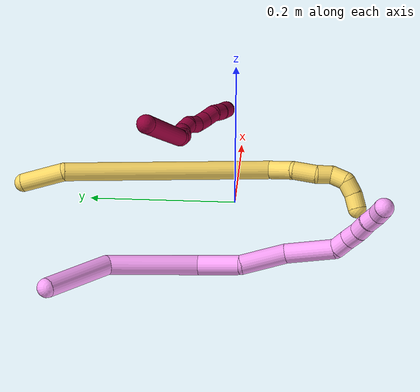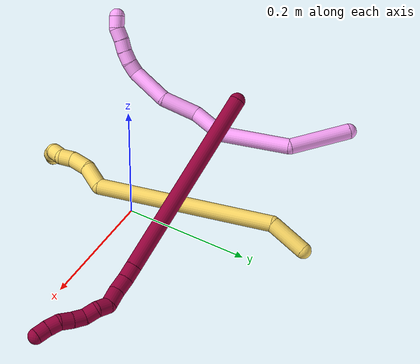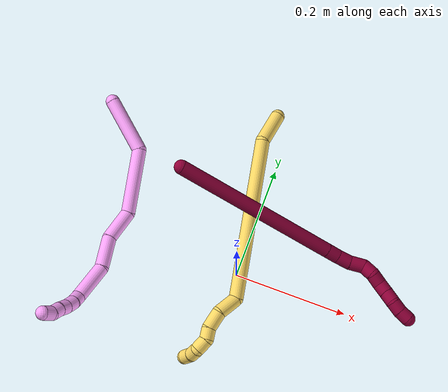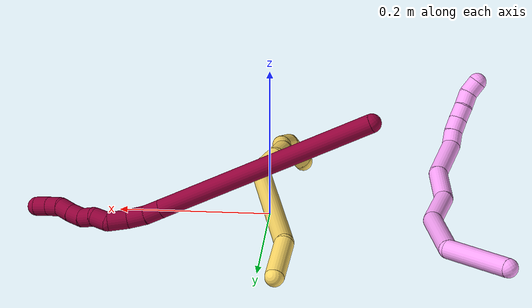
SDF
<sdf version="1.7">
 <world name="default">
  <model name="4">
   <static>0</static>
   <link name="4">
    <collision name="collision-cylinder-e_1_1_4">
     <pose>0.004261 -0.046142 -0.019751 1.97526 0.084699 0.128289</pose>
     <geometry><cylinder><radius>0.0125</radius><length>0.100744</length></cylinder></geometry>
     <surface>
      <friction><ode><mu>1.16</mu><mu2>1.16</mu2><slip1>0</slip1><slip2>0</slip2></ode></friction>
      <contact><ode><kp>1e+06</kp><kd>1</kd><max_vel>0</max_vel><min_depth>0.001</min_depth></ode></contact>
     </surface>
    </collision>
    <visual name="visual-cylinder-e_1_1_4">
     <pose>0.004261 -0.046142 -0.019751 1.97526 0.084699 0.128289</pose>
     <geometry><cylinder><radius>0.0125</radius><length>0.100744</length></cylinder></geometry>
     <material><ambient>1 0.65098 0.996078 1</ambient></material>
    </visual>
    <collision name="collision-cylinder-e_2_4_5">
     <pose>-0.004548 -0.147937 -0.029153 1.38692 -0.226923 -0.188861</pose>
     <geometry><cylinder><radius>0.0125</radius><length>0.116195</length></cylinder></geometry>
     <surface>
      <friction><ode><mu>1.16</mu><mu2>1.16</mu2><slip1>0</slip1><slip2>0</slip2></ode></friction>
      <contact><ode><kp>1e+06</kp><kd>1</kd><max_vel>0</max_vel><min_depth>0.001</min_depth></ode></contact>
     </surface>
    </collision>
    <visual name="visual-cylinder-e_2_4_5">
     <pose>-0.004548 -0.147937 -0.029153 1.38692 -0.226923 -0.188861</pose>
     <geometry><cylinder><radius>0.0125</radius><length>0.116195</length></cylinder></geometry>
     <material><ambient>1 0.65098 0.996078 1</ambient></material>
    </visual>
    <collision name="collision-cylinder-e_3_5_6">
     <pose>-0.022773 -0.225366 -0.001267 0.892842 -0.182309 -0.087449</pose>
     <geometry><cylinder><radius>0.0125</radius><length>0.056858</length></cylinder></geometry>
     <surface>
      <friction><ode><mu>1.16</mu><mu2>1.16</mu2><slip1>0</slip1><slip2>0</slip2></ode></friction>
      <contact><ode><kp>1e+06</kp><kd>1</kd><max_vel>0</max_vel><min_depth>0.001</min_depth></ode></contact>
     </surface>
    </collision>
    <visual name="visual-cylinder-e_3_5_6">
     <pose>-0.022773 -0.225366 -0.001267 0.892842 -0.182309 -0.087449</pose>
     <geometry><cylinder><radius>0.0125</radius><length>0.056858</length></cylinder></geometry>
     <material><ambient>1 0.65098 0.996078 1</ambient></material>
    </visual>
    <collision name="collision-cylinder-e_4_6_7">
     <pose>-0.026994 -0.27489 0.026147 1.2288 0.031661 0.022337</pose>
     <geometry><cylinder><radius>0.0125</radius><length>0.058939</length></cylinder></geometry>
     <surface>
      <friction><ode><mu>1.16</mu><mu2>1.16</mu2><slip1>0</slip1><slip2>0</slip2></ode></friction>
      <contact><ode><kp>1e+06</kp><kd>1</kd><max_vel>0</max_vel><min_depth>0.001</min_depth></ode></contact>
     </surface>
    </collision>
    <visual name="visual-cylinder-e_4_6_7">
     <pose>-0.026994 -0.27489 0.026147 1.2288 0.031661 0.022337</pose>
     <geometry><cylinder><radius>0.0125</radius><length>0.058939</length></cylinder></geometry>
     <material><ambient>1 0.65098 0.996078 1</ambient></material>
    </visual>
    <collision name="collision-cylinder-e_5_7_8">
     <pose>-0.029203 -0.327597 0.057819 0.852976 -0.094524 -0.042975</pose>
     <geometry><cylinder><radius>0.0125</radius><length>0.066567</length></cylinder></geometry>
     <surface>
      <friction><ode><mu>1.16</mu><mu2>1.16</mu2><slip1>0</slip1><slip2>0</slip2></ode></friction>
      <contact><ode><kp>1e+06</kp><kd>1</kd><max_vel>0</max_vel><min_depth>0.001</min_depth></ode></contact>
     </surface>
    </collision>
    <visual name="visual-cylinder-e_5_7_8">
     <pose>-0.029203 -0.327597 0.057819 0.852976 -0.094524 -0.042975</pose>
     <geometry><cylinder><radius>0.0125</radius><length>0.066567</length></cylinder></geometry>
     <material><ambient>1 0.65098 0.996078 1</ambient></material>
    </visual>
    <collision name="collision-cylinder-e_6_8_9">
     <pose>-0.028022 -0.358905 0.086459 0.747799 0.433522 0.172382</pose>
     <geometry><cylinder><radius>0.0125</radius><length>0.020578</length></cylinder></geometry>
     <surface>
      <friction><ode><mu>1.16</mu><mu2>1.16</mu2><slip1>0</slip1><slip2>0</slip2></ode></friction>
      <contact><ode><kp>1e+06</kp><kd>1</kd><max_vel>0</max_vel><min_depth>0.001</min_depth></ode></contact>
     </surface>
    </collision>
    <visual name="visual-cylinder-e_6_8_9">
     <pose>-0.028022 -0.358905 0.086459 0.747799 0.433522 0.172382</pose>
     <geometry><cylinder><radius>0.0125</radius><length>0.020578</length></cylinder></geometry>
     <material><ambient>1 0.65098 0.996078 1</ambient></material>
    </visual>
    <collision name="collision-cylinder-e_7_9_10">
     <pose>-0.020098 -0.370203 0.101288 0.554923 0.366268 0.1054</pose>
     <geometry><cylinder><radius>0.0125</radius><length>0.020118</length></cylinder></geometry>
     <surface>
      <friction><ode><mu>1.16</mu><mu2>1.16</mu2><slip1>0</slip1><slip2>0</slip2></ode></friction>
      <contact><ode><kp>1e+06</kp><kd>1</kd><max_vel>0</max_vel><min_depth>0.001</min_depth></ode></contact>
     </surface>
    </collision>
    <visual name="visual-cylinder-e_7_9_10">
     <pose>-0.020098 -0.370203 0.101288 0.554923 0.366268 0.1054</pose>
     <geometry><cylinder><radius>0.0125</radius><length>0.020118</length></cylinder></geometry>
     <material><ambient>1 0.65098 0.996078 1</ambient></material>
    </visual>
    <collision name="collision-cylinder-e_8_10_11">
     <pose>-0.012026 -0.378571 0.117536 0.39225 0.463354 0.093673</pose>
     <geometry><cylinder><radius>0.0125</radius><length>0.02</length></cylinder></geometry>
     <surface>
      <friction><ode><mu>1.16</mu><mu2>1.16</mu2><slip1>0</slip1><slip2>0</slip2></ode></friction>
      <contact><ode><kp>1e+06</kp><kd>1</kd><max_vel>0</max_vel><min_depth>0.001</min_depth></ode></contact>
     </surface>
    </collision>
    <visual name="visual-cylinder-e_8_10_11">
     <pose>-0.012026 -0.378571 0.117536 0.39225 0.463354 0.093673</pose>
     <geometry><cylinder><radius>0.0125</radius><length>0.02</length></cylinder></geometry>
     <material><ambient>1 0.65098 0.996078 1</ambient></material>
    </visual>
    <collision name="collision-cylinder-e_9_11_12">
     <pose>-0.003666 -0.386659 0.133745 0.531338 0.399572 0.110082</pose>
     <geometry><cylinder><radius>0.0125</radius><length>0.020001</length></cylinder></geometry>
     <surface>
      <friction><ode><mu>1.16</mu><mu2>1.16</mu2><slip1>0</slip1><slip2>0</slip2></ode></friction>
      <contact><ode><kp>1e+06</kp><kd>1</kd><max_vel>0</max_vel><min_depth>0.001</min_depth></ode></contact>
     </surface>
    </collision>
    <visual name="visual-cylinder-e_9_11_12">
     <pose>-0.003666 -0.386659 0.133745 0.531338 0.399572 0.110082</pose>
     <geometry><cylinder><radius>0.0125</radius><length>0.020001</length></cylinder></geometry>
     <material><ambient>1 0.65098 0.996078 1</ambient></material>
    </visual>
    <collision name="collision-cylinder-e_10_12_2">
     <pose>0.003784 -0.391984 0.15101 0.070388 0.363865 0.012954</pose>
     <geometry><cylinder><radius>0.0125</radius><length>0.020001</length></cylinder></geometry>
     <surface>
      <friction><ode><mu>1.16</mu><mu2>1.16</mu2><slip1>0</slip1><slip2>0</slip2></ode></friction>
      <contact><ode><kp>1e+06</kp><kd>1</kd><max_vel>0</max_vel><min_depth>0.001</min_depth></ode></contact>
     </surface>
    </collision>
    <visual name="visual-cylinder-e_10_12_2">
     <pose>0.003784 -0.391984 0.15101 0.070388 0.363865 0.012954</pose>
     <geometry><cylinder><radius>0.0125</radius><length>0.020001</length></cylinder></geometry>
     <material><ambient>1 0.65098 0.996078 1</ambient></material>
    </visual>
    <collision name="collision-sphere-2">
     <pose>0.007343 -0.392641 0.160333 0 -0 0</pose>
     <geometry><sphere><radius>0.0125</radius></sphere></geometry>
     <surface>
      <friction><ode><mu>1.16</mu><mu2>1.16</mu2><slip1>0</slip1><slip2>0</slip2></ode></friction>
      <contact><ode><kp>1e+06</kp><kd>1</kd><max_vel>0</max_vel><min_depth>0.001</min_depth></ode></contact>
     </surface>
    </collision>
    <visual name="visual-sphere-2">
     <pose>0.007343 -0.392641 0.160333 0 -0 0</pose>
     <geometry><sphere><radius>0.0125</radius></sphere></geometry>
     <material><ambient>1 0.65098 0.996078 1</ambient></material>
    </visual>
    <collision name="collision-sphere-12">
     <pose>0.000225 -0.391327 0.141688 0 -0 0</pose>
     <geometry><sphere><radius>0.0125</radius></sphere></geometry>
     <surface>
      <friction><ode><mu>1.16</mu><mu2>1.16</mu2><slip1>0</slip1><slip2>0</slip2></ode></friction>
      <contact><ode><kp>1e+06</kp><kd>1</kd><max_vel>0</max_vel><min_depth>0.001</min_depth></ode></contact>
     </surface>
    </collision>
    <visual name="visual-sphere-12">
     <pose>0.000225 -0.391327 0.141688 0 -0 0</pose>
     <geometry><sphere><radius>0.0125</radius></sphere></geometry>
     <material><ambient>1 0.65098 0.996078 1</ambient></material>
    </visual>
    <collision name="collision-sphere-11">
     <pose>-0.007556 -0.381991 0.125803 0 -0 0</pose>
     <geometry><sphere><radius>0.0125</radius></sphere></geometry>
     <surface>
      <friction><ode><mu>1.16</mu><mu2>1.16</mu2><slip1>0</slip1><slip2>0</slip2></ode></friction>
      <contact><ode><kp>1e+06</kp><kd>1</kd><max_vel>0</max_vel><min_depth>0.001</min_depth></ode></contact>
     </surface>
    </collision>
    <visual name="visual-sphere-11">
     <pose>-0.007556 -0.381991 0.125803 0 -0 0</pose>
     <geometry><sphere><radius>0.0125</radius></sphere></geometry>
     <material><ambient>1 0.65098 0.996078 1</ambient></material>
    </visual>
    <collision name="collision-sphere-10">
     <pose>-0.016495 -0.375151 0.10927 0 -0 0</pose>
     <geometry><sphere><radius>0.0125</radius></sphere></geometry>
     <surface>
      <friction><ode><mu>1.16</mu><mu2>1.16</mu2><slip1>0</slip1><slip2>0</slip2></ode></friction>
      <contact><ode><kp>1e+06</kp><kd>1</kd><max_vel>0</max_vel><min_depth>0.001</min_depth></ode></contact>
     </surface>
    </collision>
    <visual name="visual-sphere-10">
     <pose>-0.016495 -0.375151 0.10927 0 -0 0</pose>
     <geometry><sphere><radius>0.0125</radius></sphere></geometry>
     <material><ambient>1 0.65098 0.996078 1</ambient></material>
    </visual>
    <collision name="collision-sphere-9">
     <pose>-0.0237 -0.365255 0.093305 0 -0 0</pose>
     <geometry><sphere><radius>0.0125</radius></sphere></geometry>
     <surface>
      <friction><ode><mu>1.16</mu><mu2>1.16</mu2><slip1>0</slip1><slip2>0</slip2></ode></friction>
      <contact><ode><kp>1e+06</kp><kd>1</kd><max_vel>0</max_vel><min_depth>0.001</min_depth></ode></contact>
     </surface>
    </collision>
    <visual name="visual-sphere-9">
     <pose>-0.0237 -0.365255 0.093305 0 -0 0</pose>
     <geometry><sphere><radius>0.0125</radius></sphere></geometry>
     <material><ambient>1 0.65098 0.996078 1</ambient></material>
    </visual>
    <collision name="collision-sphere-4">
     <pose>0.008523 -0.092283 -0.039503 0 -0 0</pose>
     <geometry><sphere><radius>0.0125</radius></sphere></geometry>
     <surface>
      <friction><ode><mu>1.16</mu><mu2>1.16</mu2><slip1>0</slip1><slip2>0</slip2></ode></friction>
      <contact><ode><kp>1e+06</kp><kd>1</kd><max_vel>0</max_vel><min_depth>0.001</min_depth></ode></contact>
     </surface>
    </collision>
    <visual name="visual-sphere-4">
     <pose>0.008523 -0.092283 -0.039503 0 -0 0</pose>
     <geometry><sphere><radius>0.0125</radius></sphere></geometry>
     <material><ambient>1 0.65098 0.996078 1</ambient></material>
    </visual>
    <collision name="collision-sphere-1">
     <geometry><sphere><radius>0.0125</radius></sphere></geometry>
     <surface>
      <friction><ode><mu>1.16</mu><mu2>1.16</mu2><slip1>0</slip1><slip2>0</slip2></ode></friction>
      <contact><ode><kp>1e+06</kp><kd>1</kd><max_vel>0</max_vel><min_depth>0.001</min_depth></ode></contact>
     </surface>
    </collision>
    <visual name="visual-sphere-1">
     <geometry><sphere><radius>0.0125</radius></sphere></geometry>
     <material><ambient>1 0.65098 0.996078 1</ambient></material>
    </visual>
    <collision name="collision-sphere-8">
     <pose>-0.032344 -0.352556 0.079614 0 -0 0</pose>
     <geometry><sphere><radius>0.0125</radius></sphere></geometry>
     <surface>
      <friction><ode><mu>1.16</mu><mu2>1.16</mu2><slip1>0</slip1><slip2>0</slip2></ode></friction>
      <contact><ode><kp>1e+06</kp><kd>1</kd><max_vel>0</max_vel><min_depth>0.001</min_depth></ode></contact>
     </surface>
    </collision>
    <visual name="visual-sphere-8">
     <pose>-0.032344 -0.352556 0.079614 0 -0 0</pose>
     <geometry><sphere><radius>0.0125</radius></sphere></geometry>
     <material><ambient>1 0.65098 0.996078 1</ambient></material>
    </visual>
    <collision name="collision-sphere-5">
     <pose>-0.017619 -0.20359 -0.018802 0 -0 0</pose>
     <geometry><sphere><radius>0.0125</radius></sphere></geometry>
     <surface>
      <friction><ode><mu>1.16</mu><mu2>1.16</mu2><slip1>0</slip1><slip2>0</slip2></ode></friction>
      <contact><ode><kp>1e+06</kp><kd>1</kd><max_vel>0</max_vel><min_depth>0.001</min_depth></ode></contact>
     </surface>
    </collision>
    <visual name="visual-sphere-5">
     <pose>-0.017619 -0.20359 -0.018802 0 -0 0</pose>
     <geometry><sphere><radius>0.0125</radius></sphere></geometry>
     <material><ambient>1 0.65098 0.996078 1</ambient></material>
    </visual>
    <collision name="collision-sphere-6">
     <pose>-0.027927 -0.247141 0.016268 0 -0 0</pose>
     <geometry><sphere><radius>0.0125</radius></sphere></geometry>
     <surface>
      <friction><ode><mu>1.16</mu><mu2>1.16</mu2><slip1>0</slip1><slip2>0</slip2></ode></friction>
      <contact><ode><kp>1e+06</kp><kd>1</kd><max_vel>0</max_vel><min_depth>0.001</min_depth></ode></contact>
     </surface>
    </collision>
    <visual name="visual-sphere-6">
     <pose>-0.027927 -0.247141 0.016268 0 -0 0</pose>
     <geometry><sphere><radius>0.0125</radius></sphere></geometry>
     <material><ambient>1 0.65098 0.996078 1</ambient></material>
    </visual>
    <collision name="collision-sphere-7">
     <pose>-0.026061 -0.302638 0.036025 0 -0 0</pose>
     <geometry><sphere><radius>0.0125</radius></sphere></geometry>
     <surface>
      <friction><ode><mu>1.16</mu><mu2>1.16</mu2><slip1>0</slip1><slip2>0</slip2></ode></friction>
      <contact><ode><kp>1e+06</kp><kd>1</kd><max_vel>0</max_vel><min_depth>0.001</min_depth></ode></contact>
     </surface>
    </collision>
    <visual name="visual-sphere-7">
     <pose>-0.026061 -0.302638 0.036025 0 -0 0</pose>
     <geometry><sphere><radius>0.0125</radius></sphere></geometry>
     <material><ambient>1 0.65098 0.996078 1</ambient></material>
    </visual>
    <inertial>
     <pose>-0.012296 -0.221278 0.023607 0 -0 0</pose>
     <mass>0.5</mass>
     <inertia><ixx>0.000273</ixx><ixy>0</ixy><ixz>0</ixz><iyy>-7e-06</iyy><iyz>0</iyz><izz>0.000304</izz></inertia>
    </inertial>
   </link>
   <pose>-0.315405 0.214928 0.024539 -0.130448 -1.10469 0.574596</pose>
  </model>
  <model name="5">
   <static>0</static>
   <link name="5">
    <collision name="collision-cylinder-e_1_1_4">
     <pose>-0.009986 -0.023578 -0.017313 2.20417 -0.328992 -0.633582</pose>
     <geometry><cylinder><radius>0.0125</radius><length>0.061819</length></cylinder></geometry>
     <surface>
      <friction><ode><mu>1.16</mu><mu2>1.16</mu2><slip1>0</slip1><slip2>0</slip2></ode></friction>
      <contact><ode><kp>1e+06</kp><kd>1</kd><max_vel>0</max_vel><min_depth>0.001</min_depth></ode></contact>
     </surface>
    </collision>
    <visual name="visual-cylinder-e_1_1_4">
     <pose>-0.009986 -0.023578 -0.017313 2.20417 -0.328992 -0.633582</pose>
     <geometry><cylinder><radius>0.0125</radius><length>0.061819</length></cylinder></geometry>
     <material><ambient>1 0.858824 0.4 1</ambient></material>
    </visual>
    <collision name="collision-cylinder-e_2_4_5">
     <pose>0.002492 -0.149616 -0.129822 2.31946 0.159263 0.36213</pose>
     <geometry><cylinder><radius>0.0125</radius><length>0.283303</length></cylinder></geometry>
     <surface>
      <friction><ode><mu>1.16</mu><mu2>1.16</mu2><slip1>0</slip1><slip2>0</slip2></ode></friction>
      <contact><ode><kp>1e+06</kp><kd>1</kd><max_vel>0</max_vel><min_depth>0.001</min_depth></ode></contact>
     </surface>
    </collision>
    <visual name="visual-cylinder-e_2_4_5">
     <pose>0.002492 -0.149616 -0.129822 2.31946 0.159263 0.36213</pose>
     <geometry><cylinder><radius>0.0125</radius><length>0.283303</length></cylinder></geometry>
     <material><ambient>1 0.858824 0.4 1</ambient></material>
    </visual>
    <collision name="collision-cylinder-e_3_5_6">
     <pose>0.014934 -0.261174 -0.238865 2.56035 -0.544042 -1.5011</pose>
     <geometry><cylinder><radius>0.0125</radius><length>0.038726</length></cylinder></geometry>
     <surface>
      <friction><ode><mu>1.16</mu><mu2>1.16</mu2><slip1>0</slip1><slip2>0</slip2></ode></friction>
      <contact><ode><kp>1e+06</kp><kd>1</kd><max_vel>0</max_vel><min_depth>0.001</min_depth></ode></contact>
     </surface>
    </collision>
    <visual name="visual-cylinder-e_3_5_6">
     <pose>0.014934 -0.261174 -0.238865 2.56035 -0.544042 -1.5011</pose>
     <geometry><cylinder><radius>0.0125</radius><length>0.038726</length></cylinder></geometry>
     <material><ambient>1 0.858824 0.4 1</ambient></material>
    </visual>
    <collision name="collision-cylinder-e_4_6_7">
     <pose>0.002568 -0.278554 -0.266234 2.59194 -0.146769 -0.510108</pose>
     <geometry><cylinder><radius>0.0125</radius><length>0.03206</length></cylinder></geometry>
     <surface>
      <friction><ode><mu>1.16</mu><mu2>1.16</mu2><slip1>0</slip1><slip2>0</slip2></ode></friction>
      <contact><ode><kp>1e+06</kp><kd>1</kd><max_vel>0</max_vel><min_depth>0.001</min_depth></ode></contact>
     </surface>
    </collision>
    <visual name="visual-cylinder-e_4_6_7">
     <pose>0.002568 -0.278554 -0.266234 2.59194 -0.146769 -0.510108</pose>
     <geometry><cylinder><radius>0.0125</radius><length>0.03206</length></cylinder></geometry>
     <material><ambient>1 0.858824 0.4 1</ambient></material>
    </visual>
    <collision name="collision-cylinder-e_5_7_8">
     <pose>0.001557 -0.294018 -0.287004 2.36086 0.129944 0.313642</pose>
     <geometry><cylinder><radius>0.0125</radius><length>0.020578</length></cylinder></geometry>
     <surface>
      <friction><ode><mu>1.16</mu><mu2>1.16</mu2><slip1>0</slip1><slip2>0</slip2></ode></friction>
      <contact><ode><kp>1e+06</kp><kd>1</kd><max_vel>0</max_vel><min_depth>0.001</min_depth></ode></contact>
     </surface>
    </collision>
    <visual name="visual-cylinder-e_5_7_8">
     <pose>0.001557 -0.294018 -0.287004 2.36086 0.129944 0.313642</pose>
     <geometry><cylinder><radius>0.0125</radius><length>0.020578</length></cylinder></geometry>
     <material><ambient>1 0.858824 0.4 1</ambient></material>
    </visual>
    <collision name="collision-cylinder-e_6_8_9">
     <pose>0.000825 -0.304393 -0.304775 2.84689 -0.185598 -1.12009</pose>
     <geometry><cylinder><radius>0.0125</radius><length>0.02238</length></cylinder></geometry>
     <surface>
      <friction><ode><mu>1.16</mu><mu2>1.16</mu2><slip1>0</slip1><slip2>0</slip2></ode></friction>
      <contact><ode><kp>1e+06</kp><kd>1</kd><max_vel>0</max_vel><min_depth>0.001</min_depth></ode></contact>
     </surface>
    </collision>
    <visual name="visual-cylinder-e_6_8_9">
     <pose>0.000825 -0.304393 -0.304775 2.84689 -0.185598 -1.12009</pose>
     <geometry><cylinder><radius>0.0125</radius><length>0.02238</length></cylinder></geometry>
     <material><ambient>1 0.858824 0.4 1</ambient></material>
    </visual>
    <collision name="collision-cylinder-e_7_9_10">
     <pose>0.000875 -0.304584 -0.324803 -2.8355 0.209086 -1.19464</pose>
     <geometry><cylinder><radius>0.0125</radius><length>0.020378</length></cylinder></geometry>
     <surface>
      <friction><ode><mu>1.16</mu><mu2>1.16</mu2><slip1>0</slip1><slip2>0</slip2></ode></friction>
      <contact><ode><kp>1e+06</kp><kd>1</kd><max_vel>0</max_vel><min_depth>0.001</min_depth></ode></contact>
     </surface>
    </collision>
    <visual name="visual-cylinder-e_7_9_10">
     <pose>0.000875 -0.304584 -0.324803 -2.8355 0.209086 -1.19464</pose>
     <geometry><cylinder><radius>0.0125</radius><length>0.020378</length></cylinder></geometry>
     <material><ambient>1 0.858824 0.4 1</ambient></material>
    </visual>
    <collision name="collision-cylinder-e_8_10_2">
     <pose>0.00396 -0.296145 -0.343094 -2.58767 0.093612 -0.326617</pose>
     <geometry><cylinder><radius>0.0125</radius><length>0.020756</length></cylinder></geometry>
     <surface>
      <friction><ode><mu>1.16</mu><mu2>1.16</mu2><slip1>0</slip1><slip2>0</slip2></ode></friction>
      <contact><ode><kp>1e+06</kp><kd>1</kd><max_vel>0</max_vel><min_depth>0.001</min_depth></ode></contact>
     </surface>
    </collision>
    <visual name="visual-cylinder-e_8_10_2">
     <pose>0.00396 -0.296145 -0.343094 -2.58767 0.093612 -0.326617</pose>
     <geometry><cylinder><radius>0.0125</radius><length>0.020756</length></cylinder></geometry>
     <material><ambient>1 0.858824 0.4 1</ambient></material>
    </visual>
    <collision name="collision-sphere-2">
     <pose>0.00493 -0.29071 -0.351881 0 -0 0</pose>
     <geometry><sphere><radius>0.0125</radius></sphere></geometry>
     <surface>
      <friction><ode><mu>1.16</mu><mu2>1.16</mu2><slip1>0</slip1><slip2>0</slip2></ode></friction>
      <contact><ode><kp>1e+06</kp><kd>1</kd><max_vel>0</max_vel><min_depth>0.001</min_depth></ode></contact>
     </surface>
    </collision>
    <visual name="visual-sphere-2">
     <pose>0.00493 -0.29071 -0.351881 0 -0 0</pose>
     <geometry><sphere><radius>0.0125</radius></sphere></geometry>
     <material><ambient>1 0.858824 0.4 1</ambient></material>
    </visual>
    <collision name="collision-sphere-10">
     <pose>0.00299 -0.30158 -0.334307 0 -0 0</pose>
     <geometry><sphere><radius>0.0125</radius></sphere></geometry>
     <surface>
      <friction><ode><mu>1.16</mu><mu2>1.16</mu2><slip1>0</slip1><slip2>0</slip2></ode></friction>
      <contact><ode><kp>1e+06</kp><kd>1</kd><max_vel>0</max_vel><min_depth>0.001</min_depth></ode></contact>
     </surface>
    </collision>
    <visual name="visual-sphere-10">
     <pose>0.00299 -0.30158 -0.334307 0 -0 0</pose>
     <geometry><sphere><radius>0.0125</radius></sphere></geometry>
     <material><ambient>1 0.858824 0.4 1</ambient></material>
    </visual>
    <collision name="collision-sphere-9">
     <pose>-0.00124 -0.307587 -0.315299 0 -0 0</pose>
     <geometry><sphere><radius>0.0125</radius></sphere></geometry>
     <surface>
      <friction><ode><mu>1.16</mu><mu2>1.16</mu2><slip1>0</slip1><slip2>0</slip2></ode></friction>
      <contact><ode><kp>1e+06</kp><kd>1</kd><max_vel>0</max_vel><min_depth>0.001</min_depth></ode></contact>
     </surface>
    </collision>
    <visual name="visual-sphere-9">
     <pose>-0.00124 -0.307587 -0.315299 0 -0 0</pose>
     <geometry><sphere><radius>0.0125</radius></sphere></geometry>
     <material><ambient>1 0.858824 0.4 1</ambient></material>
    </visual>
    <collision name="collision-sphere-4">
     <pose>-0.019973 -0.047155 -0.034626 0 -0 0</pose>
     <geometry><sphere><radius>0.0125</radius></sphere></geometry>
     <surface>
      <friction><ode><mu>1.16</mu><mu2>1.16</mu2><slip1>0</slip1><slip2>0</slip2></ode></friction>
      <contact><ode><kp>1e+06</kp><kd>1</kd><max_vel>0</max_vel><min_depth>0.001</min_depth></ode></contact>
     </surface>
    </collision>
    <visual name="visual-sphere-4">
     <pose>-0.019973 -0.047155 -0.034626 0 -0 0</pose>
     <geometry><sphere><radius>0.0125</radius></sphere></geometry>
     <material><ambient>1 0.858824 0.4 1</ambient></material>
    </visual>
    <collision name="collision-sphere-1">
     <geometry><sphere><radius>0.0125</radius></sphere></geometry>
     <surface>
      <friction><ode><mu>1.16</mu><mu2>1.16</mu2><slip1>0</slip1><slip2>0</slip2></ode></friction>
      <contact><ode><kp>1e+06</kp><kd>1</kd><max_vel>0</max_vel><min_depth>0.001</min_depth></ode></contact>
     </surface>
    </collision>
    <visual name="visual-sphere-1">
     <geometry><sphere><radius>0.0125</radius></sphere></geometry>
     <material><ambient>1 0.858824 0.4 1</ambient></material>
    </visual>
    <collision name="collision-sphere-8">
     <pose>0.00289 -0.301199 -0.294251 0 -0 0</pose>
     <geometry><sphere><radius>0.0125</radius></sphere></geometry>
     <surface>
      <friction><ode><mu>1.16</mu><mu2>1.16</mu2><slip1>0</slip1><slip2>0</slip2></ode></friction>
      <contact><ode><kp>1e+06</kp><kd>1</kd><max_vel>0</max_vel><min_depth>0.001</min_depth></ode></contact>
     </surface>
    </collision>
    <visual name="visual-sphere-8">
     <pose>0.00289 -0.301199 -0.294251 0 -0 0</pose>
     <geometry><sphere><radius>0.0125</radius></sphere></geometry>
     <material><ambient>1 0.858824 0.4 1</ambient></material>
    </visual>
    <collision name="collision-sphere-5">
     <pose>0.024956 -0.252077 -0.225019 0 -0 0</pose>
     <geometry><sphere><radius>0.0125</radius></sphere></geometry>
     <surface>
      <friction><ode><mu>1.16</mu><mu2>1.16</mu2><slip1>0</slip1><slip2>0</slip2></ode></friction>
      <contact><ode><kp>1e+06</kp><kd>1</kd><max_vel>0</max_vel><min_depth>0.001</min_depth></ode></contact>
     </surface>
    </collision>
    <visual name="visual-sphere-5">
     <pose>0.024956 -0.252077 -0.225019 0 -0 0</pose>
     <geometry><sphere><radius>0.0125</radius></sphere></geometry>
     <material><ambient>1 0.858824 0.4 1</ambient></material>
    </visual>
    <collision name="collision-sphere-6">
     <pose>0.004912 -0.27027 -0.252712 0 -0 0</pose>
     <geometry><sphere><radius>0.0125</radius></sphere></geometry>
     <surface>
      <friction><ode><mu>1.16</mu><mu2>1.16</mu2><slip1>0</slip1><slip2>0</slip2></ode></friction>
      <contact><ode><kp>1e+06</kp><kd>1</kd><max_vel>0</max_vel><min_depth>0.001</min_depth></ode></contact>
     </surface>
    </collision>
    <visual name="visual-sphere-6">
     <pose>0.004912 -0.27027 -0.252712 0 -0 0</pose>
     <geometry><sphere><radius>0.0125</radius></sphere></geometry>
     <material><ambient>1 0.858824 0.4 1</ambient></material>
    </visual>
    <collision name="collision-sphere-7">
     <pose>0.000224 -0.286838 -0.279756 0 -0 0</pose>
     <geometry><sphere><radius>0.0125</radius></sphere></geometry>
     <surface>
      <friction><ode><mu>1.16</mu><mu2>1.16</mu2><slip1>0</slip1><slip2>0</slip2></ode></friction>
      <contact><ode><kp>1e+06</kp><kd>1</kd><max_vel>0</max_vel><min_depth>0.001</min_depth></ode></contact>
     </surface>
    </collision>
    <visual name="visual-sphere-7">
     <pose>0.000224 -0.286838 -0.279756 0 -0 0</pose>
     <geometry><sphere><radius>0.0125</radius></sphere></geometry>
     <material><ambient>1 0.858824 0.4 1</ambient></material>
    </visual>
    <inertial>
     <pose>0.0018 -0.17621 -0.164204 0 -0 0</pose>
     <mass>0.5</mass>
     <inertia>
      <ixx>0.002429</ixx>
      <ixy>0</ixy>
      <ixz>0</ixz>
      <iyy>-0.000525</iyy>
      <iyz>0</iyz>
      <izz>0.001082</izz>
     </inertia>
    </inertial>
   </link>
   <pose>-0.029162 0.288267 0.034109 -0.825195 0.683017 0.018175</pose>
  </model>
  <model name="8">
   <static>0</static>
   <link name="8">
    <collision name="collision-cylinder-e_1_1_4">
     <pose>0.047667 -0.002116 -0.144193 3.12692 0.319237 3.05053</pose>
     <geometry><cylinder><radius>0.0125</radius><length>0.303765</length></cylinder></geometry>
     <surface>
      <friction><ode><mu>1.16</mu><mu2>1.16</mu2><slip1>0</slip1><slip2>0</slip2></ode></friction>
      <contact><ode><kp>1e+06</kp><kd>1</kd><max_vel>0</max_vel><min_depth>0.001</min_depth></ode></contact>
     </surface>
    </collision>
    <visual name="visual-cylinder-e_1_1_4">
     <pose>0.047667 -0.002116 -0.144193 3.12692 0.319237 3.05053</pose>
     <geometry><cylinder><radius>0.0125</radius><length>0.303765</length></cylinder></geometry>
     <material><ambient>0.584314 0 0.227451 1</ambient></material>
    </visual>
    <collision name="collision-cylinder-e_2_4_5">
     <pose>0.098959 -0.004394 -0.299237 3.12661 0.322387 3.04951</pose>
     <geometry><cylinder><radius>0.0125</radius><length>0.022882</length></cylinder></geometry>
     <surface>
      <friction><ode><mu>1.16</mu><mu2>1.16</mu2><slip1>0</slip1><slip2>0</slip2></ode></friction>
      <contact><ode><kp>1e+06</kp><kd>1</kd><max_vel>0</max_vel><min_depth>0.001</min_depth></ode></contact>
     </surface>
    </collision>
    <visual name="visual-cylinder-e_2_4_5">
     <pose>0.098959 -0.004394 -0.299237 3.12661 0.322387 3.04951</pose>
     <geometry><cylinder><radius>0.0125</radius><length>0.022882</length></cylinder></geometry>
     <material><ambient>0.584314 0 0.227451 1</ambient></material>
    </visual>
    <collision name="collision-cylinder-e_3_5_6">
     <pose>0.107634 -0.003236 -0.321261 -3.02395 0.421902 -2.60485</pose>
     <geometry><cylinder><radius>0.0125</radius><length>0.024666</length></cylinder></geometry>
     <surface>
      <friction><ode><mu>1.16</mu><mu2>1.16</mu2><slip1>0</slip1><slip2>0</slip2></ode></friction>
      <contact><ode><kp>1e+06</kp><kd>1</kd><max_vel>0</max_vel><min_depth>0.001</min_depth></ode></contact>
     </surface>
    </collision>
    <visual name="visual-cylinder-e_3_5_6">
     <pose>0.107634 -0.003236 -0.321261 -3.02395 0.421902 -2.60485</pose>
     <geometry><cylinder><radius>0.0125</radius><length>0.024666</length></cylinder></geometry>
     <material><ambient>0.584314 0 0.227451 1</ambient></material>
    </visual>
    <collision name="collision-cylinder-e_4_6_7">
     <pose>0.1175 0.002646 -0.344061 -2.76776 0.368029 -1.55479</pose>
     <geometry><cylinder><radius>0.0125</radius><length>0.02677</length></cylinder></geometry>
     <surface>
      <friction><ode><mu>1.16</mu><mu2>1.16</mu2><slip1>0</slip1><slip2>0</slip2></ode></friction>
      <contact><ode><kp>1e+06</kp><kd>1</kd><max_vel>0</max_vel><min_depth>0.001</min_depth></ode></contact>
     </surface>
    </collision>
    <visual name="visual-cylinder-e_4_6_7">
     <pose>0.1175 0.002646 -0.344061 -2.76776 0.368029 -1.55479</pose>
     <geometry><cylinder><radius>0.0125</radius><length>0.02677</length></cylinder></geometry>
     <material><ambient>0.584314 0 0.227451 1</ambient></material>
    </visual>
    <collision name="collision-cylinder-e_5_7_8">
     <pose>0.130975 0.008965 -0.361324 -2.8391 0.972286 -2.58001</pose>
     <geometry><cylinder><radius>0.0125</radius><length>0.020963</length></cylinder></geometry>
     <surface>
      <friction><ode><mu>1.16</mu><mu2>1.16</mu2><slip1>0</slip1><slip2>0</slip2></ode></friction>
      <contact><ode><kp>1e+06</kp><kd>1</kd><max_vel>0</max_vel><min_depth>0.001</min_depth></ode></contact>
     </surface>
    </collision>
    <visual name="visual-cylinder-e_5_7_8">
     <pose>0.130975 0.008965 -0.361324 -2.8391 0.972286 -2.58001</pose>
     <geometry><cylinder><radius>0.0125</radius><length>0.020963</length></cylinder></geometry>
     <material><ambient>0.584314 0 0.227451 1</ambient></material>
    </visual>
    <collision name="collision-cylinder-e_6_8_9">
     <pose>0.146401 0.008196 -0.374406 2.81419 0.710566 2.3039</pose>
     <geometry><cylinder><radius>0.0125</radius><length>0.020745</length></cylinder></geometry>
     <surface>
      <friction><ode><mu>1.16</mu><mu2>1.16</mu2><slip1>0</slip1><slip2>0</slip2></ode></friction>
      <contact><ode><kp>1e+06</kp><kd>1</kd><max_vel>0</max_vel><min_depth>0.001</min_depth></ode></contact>
     </surface>
    </collision>
    <visual name="visual-cylinder-e_6_8_9">
     <pose>0.146401 0.008196 -0.374406 2.81419 0.710566 2.3039</pose>
     <geometry><cylinder><radius>0.0125</radius><length>0.020745</length></cylinder></geometry>
     <material><ambient>0.584314 0 0.227451 1</ambient></material>
    </visual>
    <collision name="collision-cylinder-e_7_9_10">
     <pose>0.161942 0.005515 -0.386713 3.11022 1.06465 3.08834</pose>
     <geometry><cylinder><radius>0.0125</radius><length>0.020067</length></cylinder></geometry>
     <surface>
      <friction><ode><mu>1.16</mu><mu2>1.16</mu2><slip1>0</slip1><slip2>0</slip2></ode></friction>
      <contact><ode><kp>1e+06</kp><kd>1</kd><max_vel>0</max_vel><min_depth>0.001</min_depth></ode></contact>
     </surface>
    </collision>
    <visual name="visual-cylinder-e_7_9_10">
     <pose>0.161942 0.005515 -0.386713 3.11022 1.06465 3.08834</pose>
     <geometry><cylinder><radius>0.0125</radius><length>0.020067</length></cylinder></geometry>
     <material><ambient>0.584314 0 0.227451 1</ambient></material>
    </visual>
    <collision name="collision-cylinder-e_8_10_11">
     <pose>0.179918 0.00569 -0.395518 -3.05888 1.16471 -3.01608</pose>
     <geometry><cylinder><radius>0.0125</radius><length>0.020031</length></cylinder></geometry>
     <surface>
      <friction><ode><mu>1.16</mu><mu2>1.16</mu2><slip1>0</slip1><slip2>0</slip2></ode></friction>
      <contact><ode><kp>1e+06</kp><kd>1</kd><max_vel>0</max_vel><min_depth>0.001</min_depth></ode></contact>
     </surface>
    </collision>
    <visual name="visual-cylinder-e_8_10_11">
     <pose>0.179918 0.00569 -0.395518 -3.05888 1.16471 -3.01608</pose>
     <geometry><cylinder><radius>0.0125</radius><length>0.020031</length></cylinder></geometry>
     <material><ambient>0.584314 0 0.227451 1</ambient></material>
    </visual>
    <collision name="collision-cylinder-e_9_11_12">
     <pose>0.196408 0.00437 -0.406181 2.90131 0.81137 2.59359</pose>
     <geometry><cylinder><radius>0.0125</radius><length>0.020099</length></cylinder></geometry>
     <surface>
      <friction><ode><mu>1.16</mu><mu2>1.16</mu2><slip1>0</slip1><slip2>0</slip2></ode></friction>
      <contact><ode><kp>1e+06</kp><kd>1</kd><max_vel>0</max_vel><min_depth>0.001</min_depth></ode></contact>
     </surface>
    </collision>
    <visual name="visual-cylinder-e_9_11_12">
     <pose>0.196408 0.00437 -0.406181 2.90131 0.81137 2.59359</pose>
     <geometry><cylinder><radius>0.0125</radius><length>0.020099</length></cylinder></geometry>
     <material><ambient>0.584314 0 0.227451 1</ambient></material>
    </visual>
    <collision name="collision-cylinder-e_10_12_2">
     <pose>0.210326 0.002458 -0.420391 3.10615 0.724247 3.04809</pose>
     <geometry><cylinder><radius>0.0125</radius><length>0.020011</length></cylinder></geometry>
     <surface>
      <friction><ode><mu>1.16</mu><mu2>1.16</mu2><slip1>0</slip1><slip2>0</slip2></ode></friction>
      <contact><ode><kp>1e+06</kp><kd>1</kd><max_vel>0</max_vel><min_depth>0.001</min_depth></ode></contact>
     </surface>
    </collision>
    <visual name="visual-cylinder-e_10_12_2">
     <pose>0.210326 0.002458 -0.420391 3.10615 0.724247 3.04809</pose>
     <geometry><cylinder><radius>0.0125</radius><length>0.020011</length></cylinder></geometry>
     <material><ambient>0.584314 0 0.227451 1</ambient></material>
    </visual>
    <collision name="collision-sphere-2">
     <pose>0.216955 0.002192 -0.42788 0 -0 0</pose>
     <geometry><sphere><radius>0.0125</radius></sphere></geometry>
     <surface>
      <friction><ode><mu>1.16</mu><mu2>1.16</mu2><slip1>0</slip1><slip2>0</slip2></ode></friction>
      <contact><ode><kp>1e+06</kp><kd>1</kd><max_vel>0</max_vel><min_depth>0.001</min_depth></ode></contact>
     </surface>
    </collision>
    <visual name="visual-sphere-2">
     <pose>0.216955 0.002192 -0.42788 0 -0 0</pose>
     <geometry><sphere><radius>0.0125</radius></sphere></geometry>
     <material><ambient>0.584314 0 0.227451 1</ambient></material>
    </visual>
    <collision name="collision-sphere-12">
     <pose>0.203696 0.002723 -0.412902 0 -0 0</pose>
     <geometry><sphere><radius>0.0125</radius></sphere></geometry>
     <surface>
      <friction><ode><mu>1.16</mu><mu2>1.16</mu2><slip1>0</slip1><slip2>0</slip2></ode></friction>
      <contact><ode><kp>1e+06</kp><kd>1</kd><max_vel>0</max_vel><min_depth>0.001</min_depth></ode></contact>
     </surface>
    </collision>
    <visual name="visual-sphere-12">
     <pose>0.203696 0.002723 -0.412902 0 -0 0</pose>
     <geometry><sphere><radius>0.0125</radius></sphere></geometry>
     <material><ambient>0.584314 0 0.227451 1</ambient></material>
    </visual>
    <collision name="collision-sphere-11">
     <pose>0.189119 0.006017 -0.399461 0 -0 0</pose>
     <geometry><sphere><radius>0.0125</radius></sphere></geometry>
     <surface>
      <friction><ode><mu>1.16</mu><mu2>1.16</mu2><slip1>0</slip1><slip2>0</slip2></ode></friction>
      <contact><ode><kp>1e+06</kp><kd>1</kd><max_vel>0</max_vel><min_depth>0.001</min_depth></ode></contact>
     </surface>
    </collision>
    <visual name="visual-sphere-11">
     <pose>0.189119 0.006017 -0.399461 0 -0 0</pose>
     <geometry><sphere><radius>0.0125</radius></sphere></geometry>
     <material><ambient>0.584314 0 0.227451 1</ambient></material>
    </visual>
    <collision name="collision-sphere-10">
     <pose>0.170717 0.005363 -0.391575 0 -0 0</pose>
     <geometry><sphere><radius>0.0125</radius></sphere></geometry>
     <surface>
      <friction><ode><mu>1.16</mu><mu2>1.16</mu2><slip1>0</slip1><slip2>0</slip2></ode></friction>
      <contact><ode><kp>1e+06</kp><kd>1</kd><max_vel>0</max_vel><min_depth>0.001</min_depth></ode></contact>
     </surface>
    </collision>
    <visual name="visual-sphere-10">
     <pose>0.170717 0.005363 -0.391575 0 -0 0</pose>
     <geometry><sphere><radius>0.0125</radius></sphere></geometry>
     <material><ambient>0.584314 0 0.227451 1</ambient></material>
    </visual>
    <collision name="collision-sphere-9">
     <pose>0.153166 0.005668 -0.381851 0 -0 0</pose>
     <geometry><sphere><radius>0.0125</radius></sphere></geometry>
     <surface>
      <friction><ode><mu>1.16</mu><mu2>1.16</mu2><slip1>0</slip1><slip2>0</slip2></ode></friction>
      <contact><ode><kp>1e+06</kp><kd>1</kd><max_vel>0</max_vel><min_depth>0.001</min_depth></ode></contact>
     </surface>
    </collision>
    <visual name="visual-sphere-9">
     <pose>0.153166 0.005668 -0.381851 0 -0 0</pose>
     <geometry><sphere><radius>0.0125</radius></sphere></geometry>
     <material><ambient>0.584314 0 0.227451 1</ambient></material>
    </visual>
    <collision name="collision-sphere-4">
     <pose>0.095334 -0.004231 -0.288387 0 -0 0</pose>
     <geometry><sphere><radius>0.0125</radius></sphere></geometry>
     <surface>
      <friction><ode><mu>1.16</mu><mu2>1.16</mu2><slip1>0</slip1><slip2>0</slip2></ode></friction>
      <contact><ode><kp>1e+06</kp><kd>1</kd><max_vel>0</max_vel><min_depth>0.001</min_depth></ode></contact>
     </surface>
    </collision>
    <visual name="visual-sphere-4">
     <pose>0.095334 -0.004231 -0.288387 0 -0 0</pose>
     <geometry><sphere><radius>0.0125</radius></sphere></geometry>
     <material><ambient>0.584314 0 0.227451 1</ambient></material>
    </visual>
    <collision name="collision-sphere-1">
     <geometry><sphere><radius>0.0125</radius></sphere></geometry>
     <surface>
      <friction><ode><mu>1.16</mu><mu2>1.16</mu2><slip1>0</slip1><slip2>0</slip2></ode></friction>
      <contact><ode><kp>1e+06</kp><kd>1</kd><max_vel>0</max_vel><min_depth>0.001</min_depth></ode></contact>
     </surface>
    </collision>
    <visual name="visual-sphere-1">
     <geometry><sphere><radius>0.0125</radius></sphere></geometry>
     <material><ambient>0.584314 0 0.227451 1</ambient></material>
    </visual>
    <collision name="collision-sphere-8">
     <pose>0.139635 0.010725 -0.366962 0 -0 0</pose>
     <geometry><sphere><radius>0.0125</radius></sphere></geometry>
     <surface>
      <friction><ode><mu>1.16</mu><mu2>1.16</mu2><slip1>0</slip1><slip2>0</slip2></ode></friction>
      <contact><ode><kp>1e+06</kp><kd>1</kd><max_vel>0</max_vel><min_depth>0.001</min_depth></ode></contact>
     </surface>
    </collision>
    <visual name="visual-sphere-8">
     <pose>0.139635 0.010725 -0.366962 0 -0 0</pose>
     <geometry><sphere><radius>0.0125</radius></sphere></geometry>
     <material><ambient>0.584314 0 0.227451 1</ambient></material>
    </visual>
    <collision name="collision-sphere-5">
     <pose>0.102584 -0.004556 -0.310087 0 -0 0</pose>
     <geometry><sphere><radius>0.0125</radius></sphere></geometry>
     <surface>
      <friction><ode><mu>1.16</mu><mu2>1.16</mu2><slip1>0</slip1><slip2>0</slip2></ode></friction>
      <contact><ode><kp>1e+06</kp><kd>1</kd><max_vel>0</max_vel><min_depth>0.001</min_depth></ode></contact>
     </surface>
    </collision>
    <visual name="visual-sphere-5">
     <pose>0.102584 -0.004556 -0.310087 0 -0 0</pose>
     <geometry><sphere><radius>0.0125</radius></sphere></geometry>
     <material><ambient>0.584314 0 0.227451 1</ambient></material>
    </visual>
    <collision name="collision-sphere-6">
     <pose>0.112685 -0.001915 -0.332435 0 -0 0</pose>
     <geometry><sphere><radius>0.0125</radius></sphere></geometry>
     <surface>
      <friction><ode><mu>1.16</mu><mu2>1.16</mu2><slip1>0</slip1><slip2>0</slip2></ode></friction>
      <contact><ode><kp>1e+06</kp><kd>1</kd><max_vel>0</max_vel><min_depth>0.001</min_depth></ode></contact>
     </surface>
    </collision>
    <visual name="visual-sphere-6">
     <pose>0.112685 -0.001915 -0.332435 0 -0 0</pose>
     <geometry><sphere><radius>0.0125</radius></sphere></geometry>
     <material><ambient>0.584314 0 0.227451 1</ambient></material>
    </visual>
    <collision name="collision-sphere-7">
     <pose>0.122316 0.007206 -0.355687 0 -0 0</pose>
     <geometry><sphere><radius>0.0125</radius></sphere></geometry>
     <surface>
      <friction><ode><mu>1.16</mu><mu2>1.16</mu2><slip1>0</slip1><slip2>0</slip2></ode></friction>
      <contact><ode><kp>1e+06</kp><kd>1</kd><max_vel>0</max_vel><min_depth>0.001</min_depth></ode></contact>
     </surface>
    </collision>
    <visual name="visual-sphere-7">
     <pose>0.122316 0.007206 -0.355687 0 -0 0</pose>
     <geometry><sphere><radius>0.0125</radius></sphere></geometry>
     <material><ambient>0.584314 0 0.227451 1</ambient></material>
    </visual>
    <inertial>
     <pose>0.086675 -6.5e-05 -0.230767 0 -0 0</pose>
     <mass>0.5</mass>
     <inertia>
      <ixx>-0.002011</ixx>
      <ixy>0</ixy>
      <ixz>0</ixz>
      <iyy>0.002552</iyy>
      <iyz>0</iyz>
      <izz>-0.000748</izz>
     </inertia>
    </inertial>
   </link>
   <pose>-0.138212 0.10805 0.171857 0.852193 -0.444806 -0.971641</pose>
  </model>
 </world>
</sdf>
